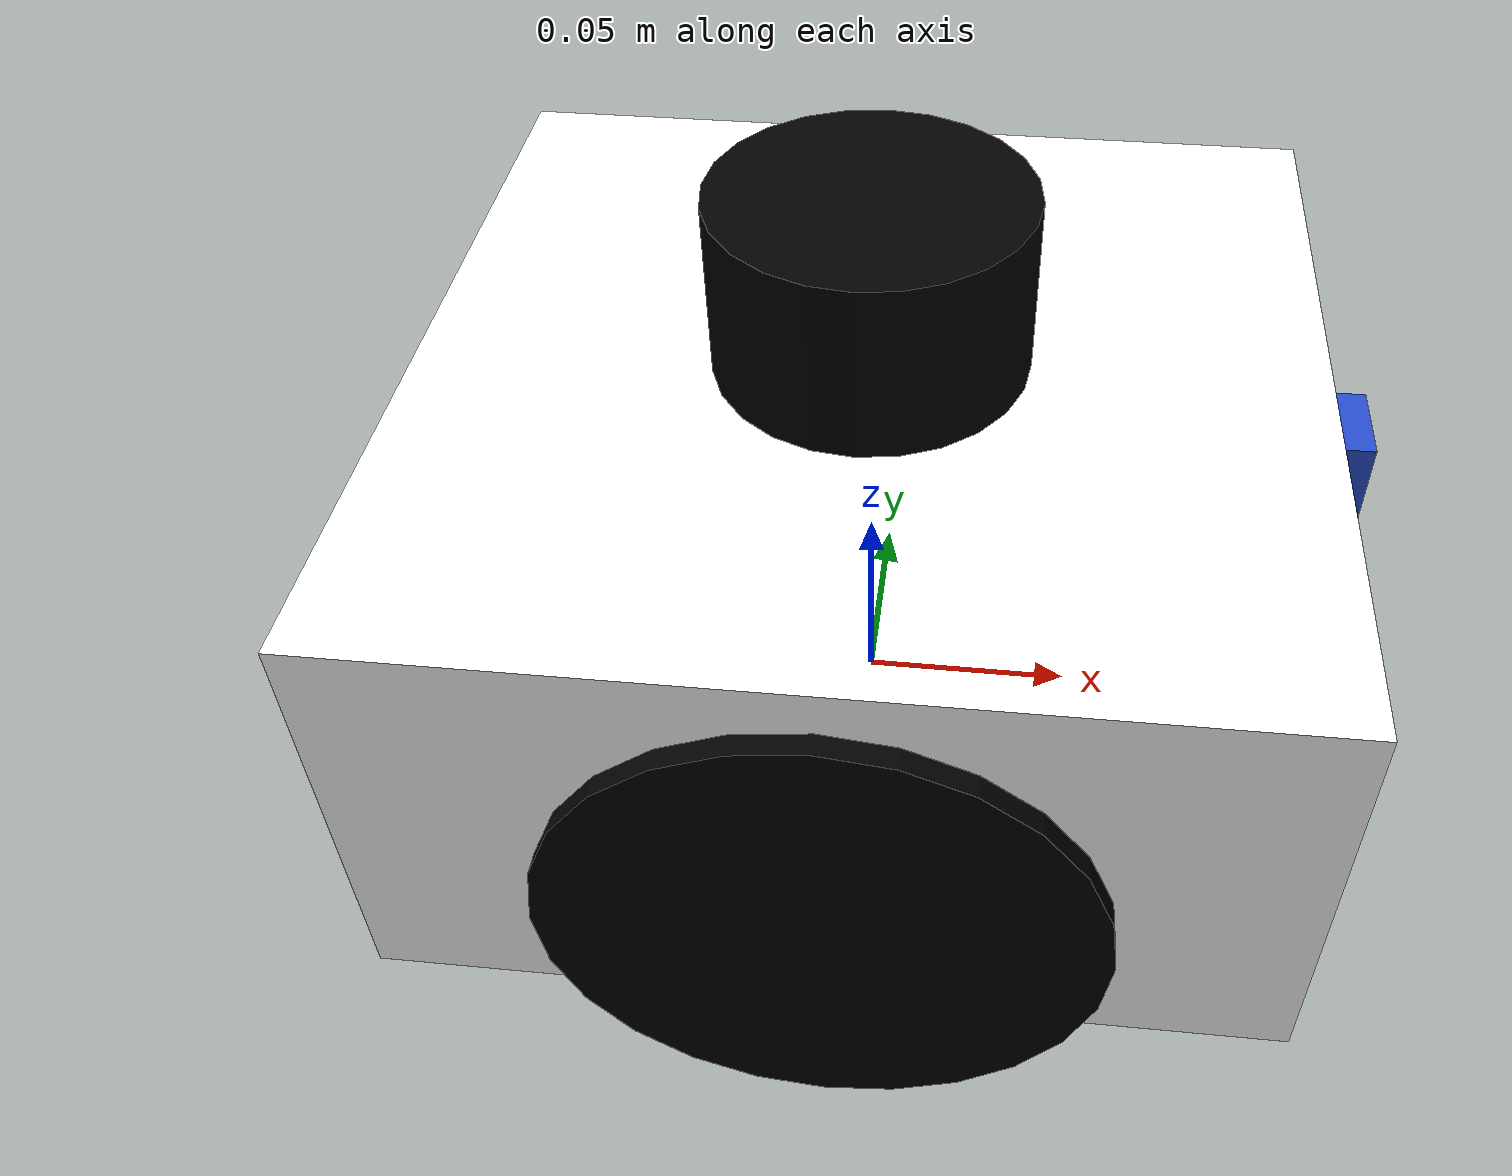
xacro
<?xml version="1.0"?>
<robot xmlns:xacro="http://www.ros.org/wiki/xacro"  name="robot">

    <xacro:include filename="ogmen_bot.urdf.xacro" />
    <xacro:include filename="gazebo_control.xacro" />
    <xacro:include filename="lidar.urdf.xacro" />
    <xacro:include filename="depthcamera.urdf.xacro" />

</robot>

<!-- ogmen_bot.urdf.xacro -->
<robot name="ogmen_bot" xmlns:xacro="http://www.ros.org/wiki/xacro">

  <xacro:include filename="inertial.urdf.xacro"/>

  <!-- Materials -->
  <material name="white">
    <color rgba="1 1 1 1"/>
  </material>

  <material name="black">
    <color rgba="0 0 0 1"/>
  </material>

  <!-- Base link -->
  <link name="base_link"/>

  <!-- Base Footprint -->
  <joint name="base_footprint_joint" type="fixed">
    <parent link="base_link"/>
    <child link="base_footprint"/>
    <origin xyz="0 0 0" rpy="0 0 0"/>
  </joint>

  <link name="base_footprint"/>

  <!-- Chassis -->
  <joint name="chassis_joint" type="fixed">
    <parent link="base_link"/>
    <child link="chassis"/>
    <origin xyz="0 0 0.05" rpy="0 0 0"/> <!-- half of height -->
  </joint>

  <link name="chassis">
    <visual>
      <origin xyz="0 0 0" rpy="0 0 0"/>
      <geometry>
        <box size="0.2 0.2 0.1"/>
      </geometry>
      <material name="white"/>
    </visual>
    <collision>
      <origin xyz="0 0 0" rpy="0 0 0"/>
      <geometry>
        <box size="0.2 0.2 0.1"/>
      </geometry>
    </collision>
    <xacro:inertial_box mass="50" x="0.2" y="0.2" z="0.1">
      <origin xyz="0 0 0" rpy="0 0 0"/>
    </xacro:inertial_box>
  </link>

  <gazebo reference="chassis">
    <material>Gazebo/white</material>
  </gazebo>

  <!-- Left Wheel -->
  <joint name="left_wheel_joint" type="continuous">
    <parent link="base_link"/>
    <child link="left_wheel"/>
    <origin xyz="0 0.1 0.03" rpy="-${pi/2} 0 0"/>
    <axis xyz="0 0 1"/>
  </joint>

  <link name="left_wheel">
    <visual>
      <geometry>
        <cylinder radius="0.06" length="0.01"/>
      </geometry>
      <material name="black"/>
    </visual>
    <collision>
      <geometry>
        <cylinder radius="0.06" length="0.01"/>
      </geometry>
    </collision>
    <xacro:inertial_cylinder mass="10" length="0.01" radius="0.06">
      <origin xyz="0 0 0" rpy="0 0 0"/>
    </xacro:inertial_cylinder>
  </link>

  <gazebo reference="left_wheel">
    <material>Gazebo/Black</material>
  </gazebo>

  <!-- Right Wheel -->
  <joint name="right_wheel_joint" type="continuous">
    <parent link="base_link"/>
    <child link="right_wheel"/>
    <origin xyz="0 -0.1 0.03" rpy="${pi/2} 0 0"/>
    <axis xyz="0 0 -1"/>
  </joint>

  <link name="right_wheel">
    <visual>
      <geometry>
        <cylinder radius="0.06" length="0.01"/>
      </geometry>
      <material name="black"/>
    </visual>
    <collision>
      <geometry>
        <cylinder radius="0.06" length="0.01"/>
      </geometry>
    </collision>
    <xacro:inertial_cylinder mass="10" length="0.01" radius="0.06">
      <origin xyz="0 0 0" rpy="0 0 0"/>
    </xacro:inertial_cylinder>
  </link>

  <gazebo reference="right_wheel">
    <material>Gazebo/Black</material>
  </gazebo>

  <!-- Caster Wheel -->
  <joint name="caster_wheel_joint" type="fixed">
    <parent link="base_link"/>
    <child link="caster_wheel"/>
    <origin xyz="0.065 0 -0.005"/> <!-- Positioned under -->
  </joint>

  <link name="caster_wheel">
    <visual>
      <geometry>
        <sphere radius="0.021"/>
      </geometry>
      <material name="black"/>
    </visual>
    <collision>
      <geometry>
        <sphere radius="0.021"/>
      </geometry>
    </collision>
    <xacro:inertial_sphere mass="50" radius="0.021">
      <origin xyz="0 0 0" rpy="0 0 0"/>
    </xacro:inertial_sphere>
  </link>

  <gazebo reference="caster_wheel">
    <material>Gazebo/Black</material>
    <mu1 value="0.01"/>
    <mu2 value="0.01"/>
  </gazebo>

</robot>

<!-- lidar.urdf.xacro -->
<robot xmlns:xacro="http://www.ros.org/wiki/xacro" >

    <joint name="laser_joint" type="fixed">
        <parent link="chassis"/>
        <child link="laser_frame"/>
        <origin xyz="0 0 0.07" rpy="0 0 0"/>

    </joint>

    <link name="laser_frame">
        <visual>
            <geometry>
                <cylinder radius="0.035" length="0.04"/>
            </geometry>
            <material name="black"/>
        </visual>
        <collision>
            <geometry>
                <cylinder radius="0.035" length="0.04"/>
            </geometry>
        </collision>
        <xacro:inertial_cylinder mass="0.1" length="0.04" radius="0.035">
            <origin xyz="0 0 0" rpy="0 0 0"/>
        </xacro:inertial_cylinder>
    </link>

     <gazebo reference="laser_frame">
        <material>Gazebo/Black</material>

        <sensor name="laser" type="ray">
            <pose> 0 0 0 0 0 0 </pose>
            <visualize>true</visualize>
            <update_rate>10</update_rate>
            <ray>
                <scan>
                    <horizontal>
                        <samples>360</samples>
                        <min_angle>-3.14</min_angle>
                        <max_angle>3.14</max_angle>
                    </horizontal>
                </scan>
                <range>
                    <min>0.3</min>
                    <max>12</max>
                </range>
            </ray>
            <plugin name="laser_controller"
            filename="libgazebo_ros_ray_sensor.so">
                <ros>
                    <argument>~/out:=scan</argument>
                </ros>
                <output_type>sensor_msgs/LaserScan</output_type>
                <frame_name>laser_frame</frame_name>
            </plugin>
        </sensor>
    </gazebo>

</robot>

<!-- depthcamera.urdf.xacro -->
<robot xmlns:xacro="http://www.ros.org/wiki/xacro" >

    <joint name="camera_joint" type="fixed">
        <parent link="chassis"/>
        <child link="camera_link"/>
        <origin xyz="0.1 0 0.03" rpy="0 0 0"/>
    </joint>

    <link name="camera_link">
        <visual>
            <geometry>
                <box size="0.02 0.02 0.02"/>
            </geometry>
            <material name="blue"/>
        </visual>
    </link>

    <joint name="camera_optical_joint" type="fixed">
        <parent link="camera_link"/>
        <child link="camera_link_optical"/>
        <origin xyz="0 0 0" rpy="${-pi/2} 0 ${-pi/2}"/>
    </joint>

    <link name="camera_link_optical"></link>

    <gazebo reference="camera_link">
        <material>Gazebo/Red</material>

        <sensor name="camera" type="depth">
            <pose> 0 0 0 0 0 0 </pose>
            <visualize>true</visualize>
            <update_rate>10</update_rate>
            <camera>
                <horizontal_fov>1.089</horizontal_fov>
                <image>
                    <format>B8G8R8</format>
                    <width>640</width>
                    <height>480</height>
                </image>
            </camera>
            <plugin name="camera_controller" filename="libgazebo_ros_camera.so">
                <frame_name>camera_link_optical</frame_name>
                <min_depth>0.1</min_depth>
                <max_depth>100.0</max_depth>
            </plugin>
        </sensor>

    </gazebo>

</robot>
